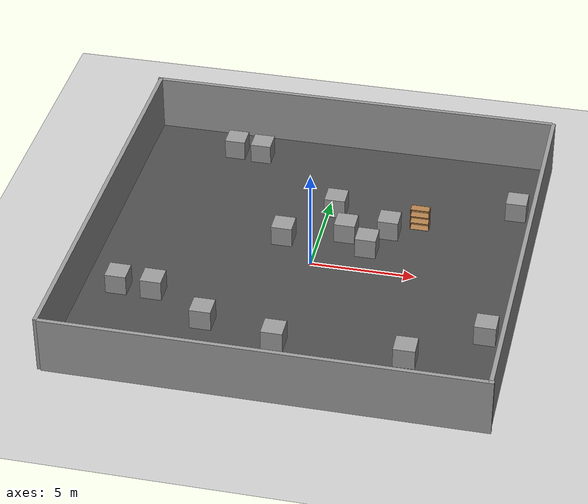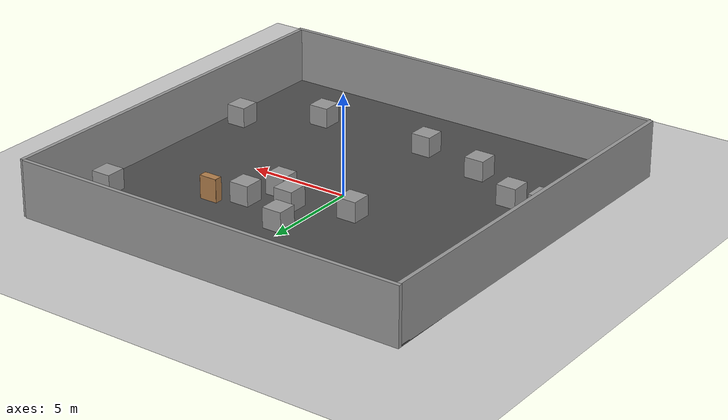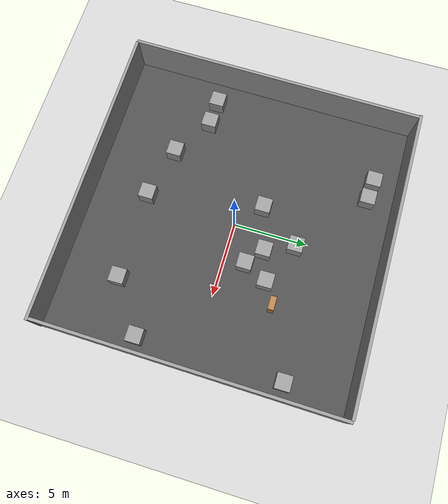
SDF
<sdf version="1.6">
 <world name="default">
  <scene><ambient>0.4 0.4 0.4 1</ambient><background>0.7 0.7 0.7 1</background><shadows>0</shadows></scene>
  <light name="sun" type="directional">
   <cast_shadows>0</cast_shadows>
   <pose>0 0 10 0 -0 0</pose>
   <diffuse>0.8 0.8 0.8 1</diffuse>
   <specular>0.2 0.2 0.2 1</specular>
   <attenuation>
    <range>1000</range>
    <constant>0.9</constant>
    <linear>0.01</linear>
    <quadratic>0.001</quadratic>
   </attenuation>
   <direction>-0.5 0.1 -0.9</direction>
  </light>
  <model name="ground_plane">
   <static>1</static>
   <link name="link">
    <collision name="collision">
     <geometry><plane><normal>0 0 1</normal><size>100 100</size></plane></geometry>
     <surface><friction><ode><mu>100</mu><mu2>50</mu2></ode></friction></surface>
    </collision>
    <visual name="visual">
     <cast_shadows>0</cast_shadows>
     <geometry><plane><normal>0 0 1</normal><size>100 100</size></plane></geometry>
     <material>
      <script><uri>file://media/materials/scripts/gazebo.material</uri><name>Gazebo/Grey</name></script>
     </material>
    </visual>
   </link>
  </model>
  <physics name="default_physics" default="0" type="ode">
   <real_time_update_rate>1000</real_time_update_rate>
   <max_step_size>0.001</max_step_size>
   <real_time_factor>1</real_time_factor>
   <ode>
    <solver>
     <type>quick</type>
     <iters>150</iters>
     <precon_iters>0</precon_iters>
     <sor>1.4</sor>
     <use_dynamic_moi_rescaling>1</use_dynamic_moi_rescaling>
    </solver>
    <constraints>
     <cfm>1e-05</cfm>
     <erp>0.2</erp>
     <contact_max_correcting_vel>2000</contact_max_correcting_vel>
     <contact_surface_layer>0.01</contact_surface_layer>
    </constraints>
   </ode>
  </physics>
  <gravity>0 0 -9.8</gravity>
  <magnetic_field>6e-06 2.3e-05 -4.2e-05</magnetic_field>
  <atmosphere type="adiabatic"/>
  <spherical_coordinates>
   <surface_model>EARTH_WGS84</surface_model>
   <latitude_deg>0</latitude_deg>
   <longitude_deg>0</longitude_deg>
   <elevation>0</elevation>
   <heading_deg>0</heading_deg>
  </spherical_coordinates>
  <model name="grey_wall">
   <link name="link">
    <pose>0 0 1.4 0 -0 0</pose>
    <inertial>
     <inertia><ixx>0</ixx><ixy>0</ixy><ixz>0</ixz><iyy>0</iyy><iyz>0</iyz><izz>0</izz></inertia>
     <mass>0</mass>
    </inertial>
    <visual name="visual">
     <cast_shadows>0</cast_shadows>
     <geometry><box><size>20.0681 0.2 2.8</size></box></geometry>
     <material>
      <script>
       <uri>model://grey_wall/materials/scripts</uri>
       <uri>model://grey_wall/materials/textures</uri>
       <name>vrc/grey_wall</name>
      </script>
      <shader type="pixel"/>
     </material>
    </visual>
    <collision name="collision">
     <geometry><box><size>20.0681 0.2 2.8</size></box></geometry>
     <surface>
      <friction>
       <ode><mu>1</mu><mu2>1</mu2><fdir1>0 0 0</fdir1><slip1>0</slip1><slip2>0</slip2></ode>
       <torsional>
        <coefficient>1</coefficient>
        <patch_radius>0</patch_radius>
        <surface_radius>0</surface_radius>
        <use_patch_radius>1</use_patch_radius>
        <ode><slip>0</slip></ode>
       </torsional>
      </friction>
      <bounce><restitution_coefficient>0</restitution_coefficient><threshold>1e+06</threshold></bounce>
      <contact>
       <collide_without_contact>0</collide_without_contact>
       <collide_without_contact_bitmask>1</collide_without_contact_bitmask>
       <collide_bitmask>1</collide_bitmask>
       <ode>
        <soft_cfm>0</soft_cfm>
        <soft_erp>0.2</soft_erp>
        <kp>1e+13</kp>
        <kd>1</kd>
        <max_vel>0.01</max_vel>
        <min_depth>0</min_depth>
       </ode>
       <bullet>
        <split_impulse>1</split_impulse>
        <split_impulse_penetration_threshold>-0.01</split_impulse_penetration_threshold>
        <soft_cfm>0</soft_cfm>
        <soft_erp>0.2</soft_erp>
        <kp>1e+13</kp>
        <kd>1</kd>
       </bullet>
      </contact>
     </surface>
    </collision>
   </link>
   <static>1</static>
   <pose>0 10 0 0 -0 0</pose>
  </model>
  <model name="grey_wall_clone">
   <link name="link">
    <pose>0 0 1.4 0 -0 0</pose>
    <inertial>
     <inertia><ixx>0</ixx><ixy>0</ixy><ixz>0</ixz><iyy>0</iyy><iyz>0</iyz><izz>0</izz></inertia>
     <mass>0</mass>
    </inertial>
    <visual name="visual">
     <cast_shadows>0</cast_shadows>
     <geometry><box><size>20.0681 0.2 2.8</size></box></geometry>
     <material>
      <script>
       <uri>model://grey_wall/materials/scripts</uri>
       <uri>model://grey_wall/materials/textures</uri>
       <name>vrc/grey_wall</name>
      </script>
      <shader type="pixel"/>
     </material>
    </visual>
    <collision name="collision">
     <geometry><box><size>20.0681 0.2 2.8</size></box></geometry>
     <surface>
      <friction>
       <ode><mu>1</mu><mu2>1</mu2><fdir1>0 0 0</fdir1><slip1>0</slip1><slip2>0</slip2></ode>
       <torsional>
        <coefficient>1</coefficient>
        <patch_radius>0</patch_radius>
        <surface_radius>0</surface_radius>
        <use_patch_radius>1</use_patch_radius>
        <ode><slip>0</slip></ode>
       </torsional>
      </friction>
      <bounce><restitution_coefficient>0</restitution_coefficient><threshold>1e+06</threshold></bounce>
      <contact>
       <collide_without_contact>0</collide_without_contact>
       <collide_without_contact_bitmask>1</collide_without_contact_bitmask>
       <collide_bitmask>1</collide_bitmask>
       <ode>
        <soft_cfm>0</soft_cfm>
        <soft_erp>0.2</soft_erp>
        <kp>1e+13</kp>
        <kd>1</kd>
        <max_vel>0.01</max_vel>
        <min_depth>0</min_depth>
       </ode>
       <bullet>
        <split_impulse>1</split_impulse>
        <split_impulse_penetration_threshold>-0.01</split_impulse_penetration_threshold>
        <soft_cfm>0</soft_cfm>
        <soft_erp>0.2</soft_erp>
        <kp>1e+13</kp>
        <kd>1</kd>
       </bullet>
      </contact>
     </surface>
    </collision>
   </link>
   <static>1</static>
   <pose>0 -10 0 0 -0 0</pose>
  </model>
  <model name="grey_wall_clone_0">
   <link name="link">
    <pose>0 0 1.4 0 -0 0</pose>
    <inertial>
     <inertia><ixx>0</ixx><ixy>0</ixy><ixz>0</ixz><iyy>0</iyy><iyz>0</iyz><izz>0</izz></inertia>
     <mass>0</mass>
    </inertial>
    <visual name="visual">
     <cast_shadows>0</cast_shadows>
     <geometry><box><size>20.0681 0.2 2.8</size></box></geometry>
     <material>
      <script>
       <uri>model://grey_wall/materials/scripts</uri>
       <uri>model://grey_wall/materials/textures</uri>
       <name>vrc/grey_wall</name>
      </script>
      <shader type="pixel"/>
     </material>
    </visual>
    <collision name="collision">
     <geometry><box><size>20.0681 0.2 2.8</size></box></geometry>
     <surface>
      <friction>
       <ode><mu>1</mu><mu2>1</mu2><fdir1>0 0 0</fdir1><slip1>0</slip1><slip2>0</slip2></ode>
       <torsional>
        <coefficient>1</coefficient>
        <patch_radius>0</patch_radius>
        <surface_radius>0</surface_radius>
        <use_patch_radius>1</use_patch_radius>
        <ode><slip>0</slip></ode>
       </torsional>
      </friction>
      <bounce><restitution_coefficient>0</restitution_coefficient><threshold>1e+06</threshold></bounce>
      <contact>
       <collide_without_contact>0</collide_without_contact>
       <collide_without_contact_bitmask>1</collide_without_contact_bitmask>
       <collide_bitmask>1</collide_bitmask>
       <ode>
        <soft_cfm>0</soft_cfm>
        <soft_erp>0.2</soft_erp>
        <kp>1e+13</kp>
        <kd>1</kd>
        <max_vel>0.01</max_vel>
        <min_depth>0</min_depth>
       </ode>
       <bullet>
        <split_impulse>1</split_impulse>
        <split_impulse_penetration_threshold>-0.01</split_impulse_penetration_threshold>
        <soft_cfm>0</soft_cfm>
        <soft_erp>0.2</soft_erp>
        <kp>1e+13</kp>
        <kd>1</kd>
       </bullet>
      </contact>
     </surface>
    </collision>
   </link>
   <static>1</static>
   <pose>10 0 0 0 -0 1.56</pose>
  </model>
  <model name="grey_wall_clone_0_clone">
   <link name="link">
    <pose>0 0 1.4 0 -0 0</pose>
    <inertial>
     <inertia><ixx>0</ixx><ixy>0</ixy><ixz>0</ixz><iyy>0</iyy><iyz>0</iyz><izz>0</izz></inertia>
     <mass>0</mass>
    </inertial>
    <visual name="visual">
     <cast_shadows>0</cast_shadows>
     <geometry><box><size>20.0681 0.2 2.8</size></box></geometry>
     <material>
      <script>
       <uri>model://grey_wall/materials/scripts</uri>
       <uri>model://grey_wall/materials/textures</uri>
       <name>vrc/grey_wall</name>
      </script>
      <shader type="pixel"/>
     </material>
    </visual>
    <collision name="collision">
     <geometry><box><size>20.0681 0.2 2.8</size></box></geometry>
     <surface>
      <friction>
       <ode><mu>1</mu><mu2>1</mu2><fdir1>0 0 0</fdir1><slip1>0</slip1><slip2>0</slip2></ode>
       <torsional>
        <coefficient>1</coefficient>
        <patch_radius>0</patch_radius>
        <surface_radius>0</surface_radius>
        <use_patch_radius>1</use_patch_radius>
        <ode><slip>0</slip></ode>
       </torsional>
      </friction>
      <bounce><restitution_coefficient>0</restitution_coefficient><threshold>1e+06</threshold></bounce>
      <contact>
       <collide_without_contact>0</collide_without_contact>
       <collide_without_contact_bitmask>1</collide_without_contact_bitmask>
       <collide_bitmask>1</collide_bitmask>
       <ode>
        <soft_cfm>0</soft_cfm>
        <soft_erp>0.2</soft_erp>
        <kp>1e+13</kp>
        <kd>1</kd>
        <max_vel>0.01</max_vel>
        <min_depth>0</min_depth>
       </ode>
       <bullet>
        <split_impulse>1</split_impulse>
        <split_impulse_penetration_threshold>-0.01</split_impulse_penetration_threshold>
        <soft_cfm>0</soft_cfm>
        <soft_erp>0.2</soft_erp>
        <kp>1e+13</kp>
        <kd>1</kd>
       </bullet>
      </contact>
     </surface>
    </collision>
   </link>
   <static>1</static>
   <pose>-10 0 0 0 -0 1.56</pose>
  </model>
  <model name="bookshelf">
   <static>1</static>
   <link name="link">
    <inertial><mass>1</mass></inertial>
    <collision name="back">
     <pose>0 0.005 0.6 0 -0 0</pose>
     <geometry><box><size>0.9 0.01 1.2</size></box></geometry>
    </collision>
    <visual name="visual1">
     <pose>0 0.005 0.6 0 -0 0</pose>
     <geometry><box><size>0.9 0.01 1.2</size></box></geometry>
     <material>
      <script><uri>file://media/materials/scripts/gazebo.material</uri><name>Gazebo/Wood</name></script>
     </material>
    </visual>
    <collision name="left_side">
     <pose>0.45 -0.195 0.6 0 -0 0</pose>
     <geometry><box><size>0.02 0.4 1.2</size></box></geometry>
    </collision>
    <visual name="visual2">
     <pose>0.45 -0.195 0.6 0 -0 0</pose>
     <geometry><box><size>0.02 0.4 1.2</size></box></geometry>
     <material>
      <script><uri>file://media/materials/scripts/gazebo.material</uri><name>Gazebo/Wood</name></script>
     </material>
    </visual>
    <collision name="right_side">
     <pose>-0.45 -0.195 0.6 0 -0 0</pose>
     <geometry><box><size>0.02 0.4 1.2</size></box></geometry>
    </collision>
    <visual name="visual3">
     <pose>-0.45 -0.195 0.6 0 -0 0</pose>
     <geometry><box><size>0.02 0.4 1.2</size></box></geometry>
     <material>
      <script><uri>file://media/materials/scripts/gazebo.material</uri><name>Gazebo/Wood</name></script>
     </material>
    </visual>
    <collision name="bottom">
     <pose>0 -0.195 0.03 0 -0 0</pose>
     <geometry><box><size>0.88 0.4 0.06</size></box></geometry>
    </collision>
    <visual name="visual4">
     <pose>0 -0.195 0.03 0 -0 0</pose>
     <geometry><box><size>0.88 0.4 0.06</size></box></geometry>
     <material>
      <script><uri>file://media/materials/scripts/gazebo.material</uri><name>Gazebo/Wood</name></script>
     </material>
    </visual>
    <collision name="top">
     <pose>0 -0.195 1.19 0 -0 0</pose>
     <geometry><box><size>0.88 0.4 0.02</size></box></geometry>
    </collision>
    <visual name="visual5">
     <pose>0 -0.195 1.19 0 -0 0</pose>
     <geometry><box><size>0.88 0.4 0.02</size></box></geometry>
     <material>
      <script><uri>file://media/materials/scripts/gazebo.material</uri><name>Gazebo/Wood</name></script>
     </material>
    </visual>
    <collision name="low_shelf">
     <pose>0 -0.195 0.43 0 -0 0</pose>
     <geometry><box><size>0.88 0.4 0.02</size></box></geometry>
    </collision>
    <visual name="visual6">
     <pose>0 -0.195 0.43 0 -0 0</pose>
     <geometry><box><size>0.88 0.4 0.02</size></box></geometry>
     <material>
      <script><uri>file://media/materials/scripts/gazebo.material</uri><name>Gazebo/Wood</name></script>
     </material>
    </visual>
    <collision name="high_shelf">
     <pose>0 -0.195 0.8 0 -0 0</pose>
     <geometry><box><size>0.88 0.4 0.02</size></box></geometry>
    </collision>
    <visual name="visual7">
     <pose>0 -0.195 0.8 0 -0 0</pose>
     <geometry><box><size>0.88 0.4 0.02</size></box></geometry>
     <material>
      <script><uri>file://media/materials/scripts/gazebo.material</uri><name>Gazebo/Wood</name></script>
     </material>
    </visual>
   </link>
   <pose>4.57007 4.03648 0 0 -0 0</pose>
  </model>
  <light name="user_spot_light_0" type="spot">
   <pose>8.02561 0.00623 1 0 -0 0</pose>
   <diffuse>0.5 0.5 0.5 1</diffuse>
   <specular>0.1 0.1 0.1 1</specular>
   <direction>0 0 -1</direction>
   <attenuation>
    <range>20</range>
    <constant>0.5</constant>
    <linear>0.01</linear>
    <quadratic>0.001</quadratic>
   </attenuation>
   <cast_shadows>0</cast_shadows>
   <spot><inner_angle>0.6</inner_angle><outer_angle>1</outer_angle><falloff>1</falloff></spot>
  </light>
  <light name="user_spot_light_1" type="spot">
   <pose>6.96499 7.98906 1 0 -0 0</pose>
   <diffuse>0.5 0.5 0.5 1</diffuse>
   <specular>0.1 0.1 0.1 1</specular>
   <direction>0 0 -1</direction>
   <attenuation>
    <range>20</range>
    <constant>0.5</constant>
    <linear>0.01</linear>
    <quadratic>0.001</quadratic>
   </attenuation>
   <cast_shadows>0</cast_shadows>
   <spot><inner_angle>0.6</inner_angle><outer_angle>1</outer_angle><falloff>1</falloff></spot>
  </light>
  <light name="user_spot_light_2" type="spot">
   <pose>-0.993582 5.99922 1 0 -0 0</pose>
   <diffuse>0.5 0.5 0.5 1</diffuse>
   <specular>0.1 0.1 0.1 1</specular>
   <direction>0 0 -1</direction>
   <attenuation>
    <range>20</range>
    <constant>0.5</constant>
    <linear>0.01</linear>
    <quadratic>0.001</quadratic>
   </attenuation>
   <cast_shadows>0</cast_shadows>
   <spot><inner_angle>0.6</inner_angle><outer_angle>1</outer_angle><falloff>1</falloff></spot>
  </light>
  <light name="user_spot_light_3" type="spot">
   <pose>-7.03523 3.99915 1 0 -0 0</pose>
   <diffuse>0.5 0.5 0.5 1</diffuse>
   <specular>0.1 0.1 0.1 1</specular>
   <direction>0 0 -1</direction>
   <attenuation>
    <range>20</range>
    <constant>0.5</constant>
    <linear>0.01</linear>
    <quadratic>0.001</quadratic>
   </attenuation>
   <cast_shadows>0</cast_shadows>
   <spot><inner_angle>0.6</inner_angle><outer_angle>1</outer_angle><falloff>1</falloff></spot>
  </light>
  <light name="user_spot_light_4" type="spot">
   <pose>-8.98662 -2.04605 1 0 -0 0</pose>
   <diffuse>0.5 0.5 0.5 1</diffuse>
   <specular>0.1 0.1 0.1 1</specular>
   <direction>0 0 -1</direction>
   <attenuation>
    <range>20</range>
    <constant>0.5</constant>
    <linear>0.01</linear>
    <quadratic>0.001</quadratic>
   </attenuation>
   <cast_shadows>0</cast_shadows>
   <spot><inner_angle>0.6</inner_angle><outer_angle>1</outer_angle><falloff>1</falloff></spot>
  </light>
  <light name="user_spot_light_7" type="spot">
   <pose>0.981461 -3.97661 1 0 -0 0</pose>
   <diffuse>0.5 0.5 0.5 1</diffuse>
   <specular>0.1 0.1 0.1 1</specular>
   <direction>0 0 -1</direction>
   <attenuation>
    <range>20</range>
    <constant>0.5</constant>
    <linear>0.01</linear>
    <quadratic>0.001</quadratic>
   </attenuation>
   <cast_shadows>0</cast_shadows>
   <spot><inner_angle>0.6</inner_angle><outer_angle>1</outer_angle><falloff>1</falloff></spot>
  </light>
  <light name="user_spot_light_5" type="spot">
   <pose>6.01981 -3.96162 1 0 -0 0</pose>
   <diffuse>0.5 0.5 0.5 1</diffuse>
   <specular>0.1 0.1 0.1 1</specular>
   <direction>0 0 -1</direction>
   <attenuation>
    <range>20</range>
    <constant>0.5</constant>
    <linear>0.01</linear>
    <quadratic>0.001</quadratic>
   </attenuation>
   <cast_shadows>0</cast_shadows>
   <spot><inner_angle>0.6</inner_angle><outer_angle>1</outer_angle><falloff>1</falloff></spot>
  </light>
  <model name="asphalt_plane">
   <static>1</static>
   <link name="link">
    <collision name="collision"><geometry><box><size>20 20 0.1</size></box></geometry></collision>
    <visual name="visual">
     <cast_shadows>0</cast_shadows>
     <geometry><box><size>20 20 0.1</size></box></geometry>
     <material>
      <script>
       <uri>model://asphalt_plane/materials/scripts</uri>
       <uri>model://asphalt_plane/materials/textures</uri>
       <name>vrc/asphalt</name>
      </script>
     </material>
    </visual>
   </link>
  </model>
  <model name="unit_box">
   <pose>-1.63719 1.55688 0.549998 -4e-06 -0 -0.000218</pose>
   <link name="link">
    <inertial>
     <mass>1</mass>
     <inertia>
      <ixx>0.166667</ixx>
      <ixy>0</ixy>
      <ixz>0</ixz>
      <iyy>0.166667</iyy>
      <iyz>0</iyz>
      <izz>0.166667</izz>
     </inertia>
    </inertial>
    <collision name="collision"><geometry><box><size>1 1 1</size></box></geometry></collision>
    <visual name="visual">
     <geometry><box><size>1 1 1</size></box></geometry>
     <material>
      <script><name>Gazebo/Grey</name><uri>file://media/materials/scripts/gazebo.material</uri></script>
     </material>
    </visual>
   </link>
  </model>
  <model name="unit_box_0">
   <pose>-6.61061 -3.72559 0.549998 -4e-06 -0 -0</pose>
   <link name="link">
    <inertial>
     <mass>1</mass>
     <inertia>
      <ixx>0.166667</ixx>
      <ixy>0</ixy>
      <ixz>0</ixz>
      <iyy>0.166667</iyy>
      <iyz>0</iyz>
      <izz>0.166667</izz>
     </inertia>
    </inertial>
    <collision name="collision"><geometry><box><size>1 1 1</size></box></geometry></collision>
    <visual name="visual">
     <geometry><box><size>1 1 1</size></box></geometry>
     <material>
      <script><name>Gazebo/Grey</name><uri>file://media/materials/scripts/gazebo.material</uri></script>
     </material>
    </visual>
   </link>
  </model>
  <model name="unit_box_1">
   <pose>-8.29936 -3.67314 0.549998 -4e-06 -0 -0</pose>
   <link name="link">
    <inertial>
     <mass>1</mass>
     <inertia>
      <ixx>0.166667</ixx>
      <ixy>0</ixy>
      <ixz>0</ixz>
      <iyy>0.166667</iyy>
      <iyz>0</iyz>
      <izz>0.166667</izz>
     </inertia>
    </inertial>
    <collision name="collision"><geometry><box><size>1 1 1</size></box></geometry></collision>
    <visual name="visual">
     <geometry><box><size>1 1 1</size></box></geometry>
     <material>
      <script><name>Gazebo/Grey</name><uri>file://media/materials/scripts/gazebo.material</uri></script>
     </material>
    </visual>
   </link>
  </model>
  <model name="unit_box_2">
   <pose>-3.84563 -5.37692 0.55 -0 -0 -0</pose>
   <link name="link">
    <inertial>
     <mass>1</mass>
     <inertia>
      <ixx>0.166667</ixx>
      <ixy>0</ixy>
      <ixz>0</ixz>
      <iyy>0.166667</iyy>
      <iyz>0</iyz>
      <izz>0.166667</izz>
     </inertia>
    </inertial>
    <collision name="collision"><geometry><box><size>1 1 1</size></box></geometry></collision>
    <visual name="visual">
     <geometry><box><size>1 1 1</size></box></geometry>
     <material>
      <script><name>Gazebo/Grey</name><uri>file://media/materials/scripts/gazebo.material</uri></script>
     </material>
    </visual>
   </link>
  </model>
  <model name="unit_box_3">
   <pose>8.99076 5.79013 0.549998 -4e-06 -0 -0</pose>
   <link name="link">
    <inertial>
     <mass>1</mass>
     <inertia>
      <ixx>0.166667</ixx>
      <ixy>0</ixy>
      <ixz>0</ixz>
      <iyy>0.166667</iyy>
      <iyz>0</iyz>
      <izz>0.166667</izz>
     </inertia>
    </inertial>
    <collision name="collision"><geometry><box><size>1 1 1</size></box></geometry></collision>
    <visual name="visual">
     <geometry><box><size>1 1 1</size></box></geometry>
     <material>
      <script><name>Gazebo/Grey</name><uri>file://media/materials/scripts/gazebo.material</uri></script>
     </material>
    </visual>
   </link>
  </model>
  <model name="unit_box_5">
   <pose>-5.5182 8.21222 0.549998 -4e-06 -0 -0</pose>
   <link name="link">
    <inertial>
     <mass>1</mass>
     <inertia>
      <ixx>0.166667</ixx>
      <ixy>0</ixy>
      <ixz>0</ixz>
      <iyy>0.166667</iyy>
      <iyz>0</iyz>
      <izz>0.166667</izz>
     </inertia>
    </inertial>
    <collision name="collision"><geometry><box><size>1 1 1</size></box></geometry></collision>
    <visual name="visual">
     <geometry><box><size>1 1 1</size></box></geometry>
     <material>
      <script><name>Gazebo/Grey</name><uri>file://media/materials/scripts/gazebo.material</uri></script>
     </material>
    </visual>
   </link>
  </model>
  <model name="unit_box_6">
   <pose>-4.17334 8.11365 0.55 0 -0 0</pose>
   <link name="link">
    <inertial>
     <mass>1</mass>
     <inertia>
      <ixx>0.166667</ixx>
      <ixy>0</ixy>
      <ixz>0</ixz>
      <iyy>0.166667</iyy>
      <iyz>0</iyz>
      <izz>0.166667</izz>
     </inertia>
    </inertial>
    <collision name="collision"><geometry><box><size>1 1 1</size></box></geometry></collision>
    <visual name="visual">
     <geometry><box><size>1 1 1</size></box></geometry>
     <material>
      <script><name>Gazebo/Grey</name><uri>file://media/materials/scripts/gazebo.material</uri></script>
     </material>
    </visual>
   </link>
  </model>
  <model name="unit_box_7">
   <pose>1.24263 2.38505 0.549998 -4e-06 -0 -0</pose>
   <link name="link">
    <inertial>
     <mass>1</mass>
     <inertia>
      <ixx>0.166667</ixx>
      <ixy>0</ixy>
      <ixz>0</ixz>
      <iyy>0.166667</iyy>
      <iyz>0</iyz>
      <izz>0.166667</izz>
     </inertia>
    </inertial>
    <collision name="collision"><geometry><box><size>1 1 1</size></box></geometry></collision>
    <visual name="visual">
     <geometry><box><size>1 1 1</size></box></geometry>
     <material>
      <script><name>Gazebo/Grey</name><uri>file://media/materials/scripts/gazebo.material</uri></script>
     </material>
    </visual>
   </link>
  </model>
  <model name="unit_box_8">
   <pose>2.43177 1.4419 0.549998 -4e-06 -0 -0</pose>
   <link name="link">
    <inertial>
     <mass>1</mass>
     <inertia>
      <ixx>0.166667</ixx>
      <ixy>0</ixy>
      <ixz>0</ixz>
      <iyy>0.166667</iyy>
      <iyz>0</iyz>
      <izz>0.166667</izz>
     </inertia>
    </inertial>
    <collision name="collision"><geometry><box><size>1 1 1</size></box></geometry></collision>
    <visual name="visual">
     <geometry><box><size>1 1 1</size></box></geometry>
     <material>
      <script><name>Gazebo/Grey</name><uri>file://media/materials/scripts/gazebo.material</uri></script>
     </material>
    </visual>
   </link>
  </model>
  <model name="unit_box_4">
   <pose>0.382981 4.29808 0.549998 -5e-06 -0 -0</pose>
   <link name="link">
    <inertial>
     <mass>1</mass>
     <inertia>
      <ixx>0.166667</ixx>
      <ixy>0</ixy>
      <ixz>0</ixz>
      <iyy>0.166667</iyy>
      <iyz>0</iyz>
      <izz>0.166667</izz>
     </inertia>
    </inertial>
    <collision name="collision"><geometry><box><size>1 1 1</size></box></geometry></collision>
    <visual name="visual">
     <geometry><box><size>1 1 1</size></box></geometry>
     <material>
      <script><name>Gazebo/Grey</name><uri>file://media/materials/scripts/gazebo.material</uri></script>
     </material>
    </visual>
   </link>
  </model>
  <model name="unit_box_9">
   <pose>-0.350339 -6.19499 0.55 0 -0 0</pose>
   <link name="link">
    <inertial>
     <mass>1</mass>
     <inertia>
      <ixx>0.166667</ixx>
      <ixy>0</ixy>
      <ixz>0</ixz>
      <iyy>0.166667</iyy>
      <iyz>0</iyz>
      <izz>0.166667</izz>
     </inertia>
    </inertial>
    <collision name="collision"><geometry><box><size>1 1 1</size></box></geometry></collision>
    <visual name="visual">
     <geometry><box><size>1 1 1</size></box></geometry>
     <material>
      <script><name>Gazebo/Grey</name><uri>file://media/materials/scripts/gazebo.material</uri></script>
     </material>
    </visual>
   </link>
  </model>
  <model name="unit_box_10">
   <pose>3.20881 3.05153 0.55 0 -0 0</pose>
   <link name="link">
    <inertial>
     <mass>1</mass>
     <inertia>
      <ixx>0.166667</ixx>
      <ixy>0</ixy>
      <ixz>0</ixz>
      <iyy>0.166667</iyy>
      <iyz>0</iyz>
      <izz>0.166667</izz>
     </inertia>
    </inertial>
    <collision name="collision"><geometry><box><size>1 1 1</size></box></geometry></collision>
    <visual name="visual">
     <geometry><box><size>1 1 1</size></box></geometry>
     <material>
      <script><name>Gazebo/Grey</name><uri>file://media/materials/scripts/gazebo.material</uri></script>
     </material>
    </visual>
   </link>
  </model>
  <model name="unit_box_11">
   <pose>5.62509 -6.15902 0.549998 -4e-06 0 0.01427</pose>
   <link name="link">
    <inertial>
     <mass>1</mass>
     <inertia>
      <ixx>0.166667</ixx>
      <ixy>0</ixy>
      <ixz>0</ixz>
      <iyy>0.166667</iyy>
      <iyz>0</iyz>
      <izz>0.166667</izz>
     </inertia>
    </inertial>
    <collision name="collision"><geometry><box><size>1 1 1</size></box></geometry></collision>
    <visual name="visual">
     <geometry><box><size>1 1 1</size></box></geometry>
     <material>
      <script><name>Gazebo/Grey</name><uri>file://media/materials/scripts/gazebo.material</uri></script>
     </material>
    </visual>
   </link>
  </model>
  <model name="unit_box_12">
   <pose>8.89299 -3.85262 0.549998 -4e-06 -0 -0</pose>
   <link name="link">
    <inertial>
     <mass>1</mass>
     <inertia>
      <ixx>0.166667</ixx>
      <ixy>0</ixy>
      <ixz>0</ixz>
      <iyy>0.166667</iyy>
      <iyz>0</iyz>
      <izz>0.166667</izz>
     </inertia>
    </inertial>
    <collision name="collision"><geometry><box><size>1 1 1</size></box></geometry></collision>
    <visual name="visual">
     <geometry><box><size>1 1 1</size></box></geometry>
     <material>
      <script><name>Gazebo/Grey</name><uri>file://media/materials/scripts/gazebo.material</uri></script>
     </material>
    </visual>
   </link>
  </model>
 </world>
</sdf>
